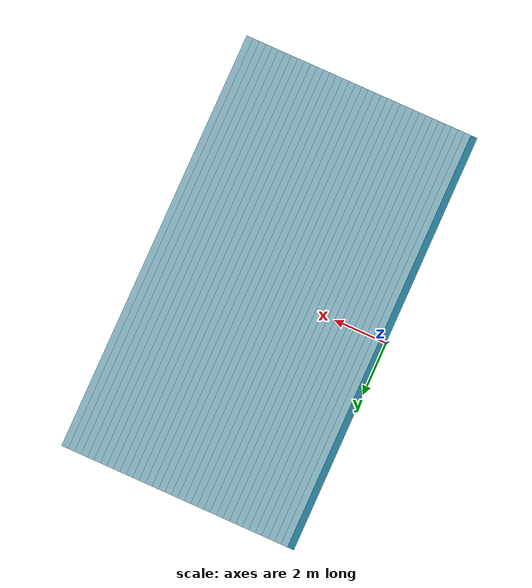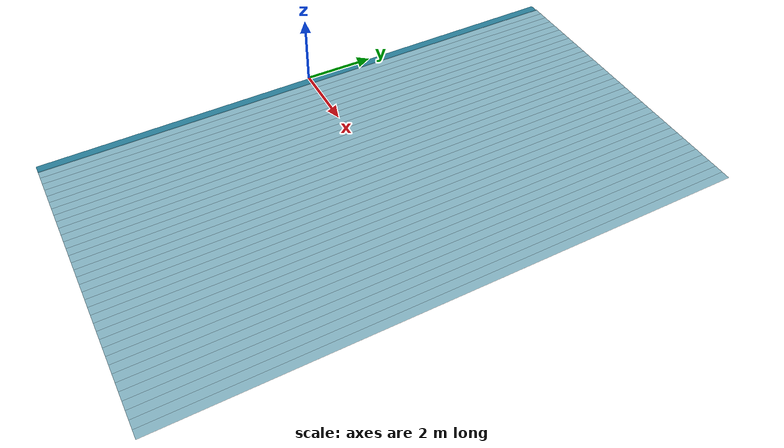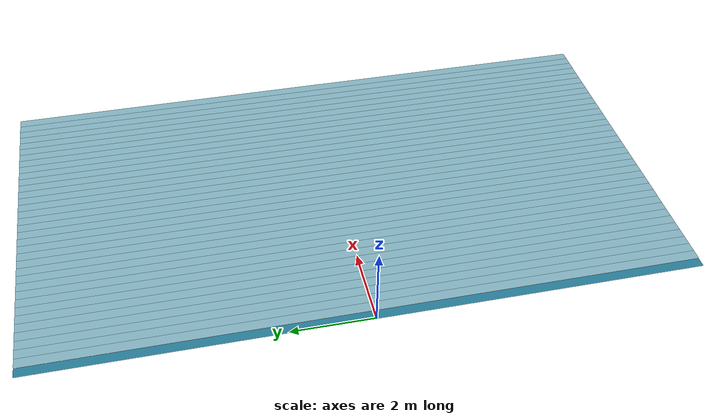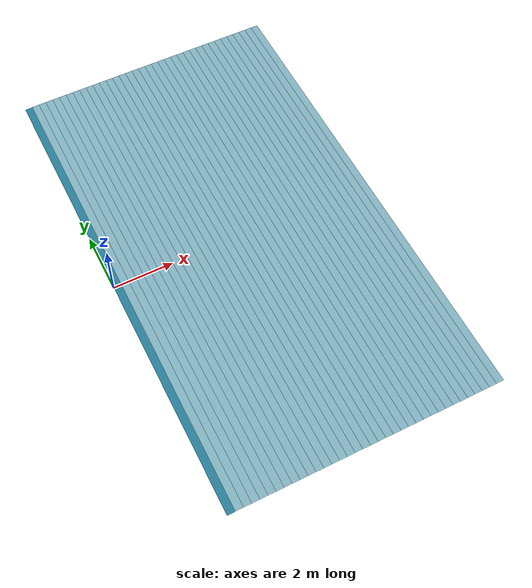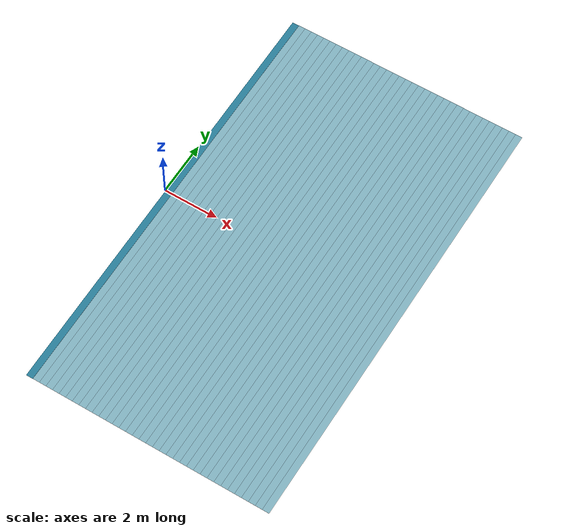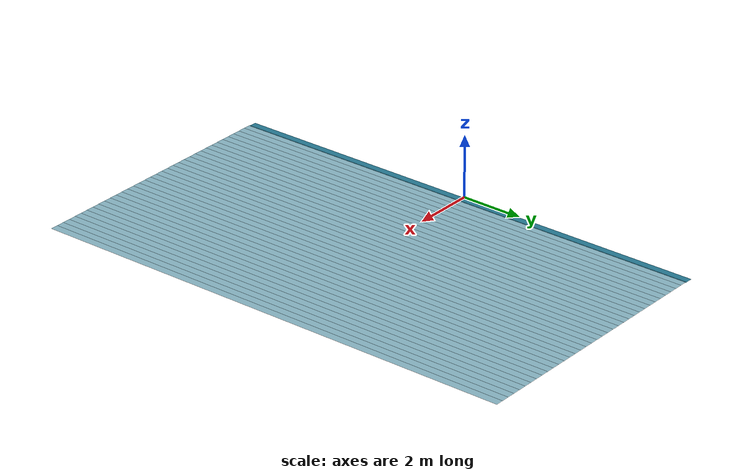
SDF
<sdf version="1.10">
 <world name="OceanWorld">
  <model name="pool_ripple_36">
   <static>true</static>
   <pose>0.125 0 0 0 0 0</pose>
   <link name="surface">
    <visual name="water">
     <cast_shadows>false</cast_shadows>
     <transparency>0.45</transparency>
     <geometry><plane><normal>0 0 1</normal><size>.251 16</size></plane></geometry>
     <material>
      <ambient>.10 .35 .42 1</ambient>
      <diffuse>.14 .46 .56 1</diffuse>
      <specular>.9 .95 1 1</specular>
      <pbr><metal><metalness>0</metalness><roughness>.16</roughness></metal></pbr>
     </material>
    </visual>
   </link>
  </model>
  <model name="pool_ripple_37">
   <static>true</static>
   <pose>0.375 0 0 0 0 0</pose>
   <link name="surface">
    <visual name="water">
     <cast_shadows>false</cast_shadows>
     <transparency>0.45</transparency>
     <geometry><plane><normal>0 0 1</normal><size>.251 16</size></plane></geometry>
     <material>
      <ambient>.10 .35 .42 1</ambient>
      <diffuse>.14 .46 .56 1</diffuse>
      <specular>.9 .95 1 1</specular>
      <pbr><metal><metalness>0</metalness><roughness>.16</roughness></metal></pbr>
     </material>
    </visual>
   </link>
  </model>
  <model name="pool_ripple_38">
   <static>true</static>
   <pose>0.625 0 0 0 0 0</pose>
   <link name="surface">
    <visual name="water">
     <cast_shadows>false</cast_shadows>
     <transparency>0.45</transparency>
     <geometry><plane><normal>0 0 1</normal><size>.251 16</size></plane></geometry>
     <material>
      <ambient>.10 .35 .42 1</ambient>
      <diffuse>.14 .46 .56 1</diffuse>
      <specular>.9 .95 1 1</specular>
      <pbr><metal><metalness>0</metalness><roughness>.16</roughness></metal></pbr>
     </material>
    </visual>
   </link>
  </model>
  <model name="pool_ripple_39">
   <static>true</static>
   <pose>0.875 0 0 0 0 0</pose>
   <link name="surface">
    <visual name="water">
     <cast_shadows>false</cast_shadows>
     <transparency>0.45</transparency>
     <geometry><plane><normal>0 0 1</normal><size>.251 16</size></plane></geometry>
     <material>
      <ambient>.10 .35 .42 1</ambient>
      <diffuse>.14 .46 .56 1</diffuse>
      <specular>.9 .95 1 1</specular>
      <pbr><metal><metalness>0</metalness><roughness>.16</roughness></metal></pbr>
     </material>
    </visual>
   </link>
  </model>
  <model name="pool_ripple_40">
   <static>true</static>
   <pose>1.125 0 0 0 0 0</pose>
   <link name="surface">
    <visual name="water">
     <cast_shadows>false</cast_shadows>
     <transparency>0.45</transparency>
     <geometry><plane><normal>0 0 1</normal><size>.251 16</size></plane></geometry>
     <material>
      <ambient>.10 .35 .42 1</ambient>
      <diffuse>.14 .46 .56 1</diffuse>
      <specular>.9 .95 1 1</specular>
      <pbr><metal><metalness>0</metalness><roughness>.16</roughness></metal></pbr>
     </material>
    </visual>
   </link>
  </model>
  <model name="pool_ripple_41">
   <static>true</static>
   <pose>1.375 0 0 0 0 0</pose>
   <link name="surface">
    <visual name="water">
     <cast_shadows>false</cast_shadows>
     <transparency>0.45</transparency>
     <geometry><plane><normal>0 0 1</normal><size>.251 16</size></plane></geometry>
     <material>
      <ambient>.10 .35 .42 1</ambient>
      <diffuse>.14 .46 .56 1</diffuse>
      <specular>.9 .95 1 1</specular>
      <pbr><metal><metalness>0</metalness><roughness>.16</roughness></metal></pbr>
     </material>
    </visual>
   </link>
  </model>
  <model name="pool_ripple_42">
   <static>true</static>
   <pose>1.625 0 0 0 0 0</pose>
   <link name="surface">
    <visual name="water">
     <cast_shadows>false</cast_shadows>
     <transparency>0.45</transparency>
     <geometry><plane><normal>0 0 1</normal><size>.251 16</size></plane></geometry>
     <material>
      <ambient>.10 .35 .42 1</ambient>
      <diffuse>.14 .46 .56 1</diffuse>
      <specular>.9 .95 1 1</specular>
      <pbr><metal><metalness>0</metalness><roughness>.16</roughness></metal></pbr>
     </material>
    </visual>
   </link>
  </model>
  <model name="pool_ripple_43">
   <static>true</static>
   <pose>1.875 0 0 0 0 0</pose>
   <link name="surface">
    <visual name="water">
     <cast_shadows>false</cast_shadows>
     <transparency>0.45</transparency>
     <geometry><plane><normal>0 0 1</normal><size>.251 16</size></plane></geometry>
     <material>
      <ambient>.10 .35 .42 1</ambient>
      <diffuse>.14 .46 .56 1</diffuse>
      <specular>.9 .95 1 1</specular>
      <pbr><metal><metalness>0</metalness><roughness>.16</roughness></metal></pbr>
     </material>
    </visual>
   </link>
  </model>
  <model name="pool_ripple_44">
   <static>true</static>
   <pose>2.125 0 0 0 0 0</pose>
   <link name="surface">
    <visual name="water">
     <cast_shadows>false</cast_shadows>
     <transparency>0.45</transparency>
     <geometry><plane><normal>0 0 1</normal><size>.251 16</size></plane></geometry>
     <material>
      <ambient>.10 .35 .42 1</ambient>
      <diffuse>.14 .46 .56 1</diffuse>
      <specular>.9 .95 1 1</specular>
      <pbr><metal><metalness>0</metalness><roughness>.16</roughness></metal></pbr>
     </material>
    </visual>
   </link>
  </model>
  <model name="pool_ripple_45">
   <static>true</static>
   <pose>2.375 0 0 0 0 0</pose>
   <link name="surface">
    <visual name="water">
     <cast_shadows>false</cast_shadows>
     <transparency>0.45</transparency>
     <geometry><plane><normal>0 0 1</normal><size>.251 16</size></plane></geometry>
     <material>
      <ambient>.10 .35 .42 1</ambient>
      <diffuse>.14 .46 .56 1</diffuse>
      <specular>.9 .95 1 1</specular>
      <pbr><metal><metalness>0</metalness><roughness>.16</roughness></metal></pbr>
     </material>
    </visual>
   </link>
  </model>
  <model name="pool_ripple_46">
   <static>true</static>
   <pose>2.625 0 0 0 0 0</pose>
   <link name="surface">
    <visual name="water">
     <cast_shadows>false</cast_shadows>
     <transparency>0.45</transparency>
     <geometry><plane><normal>0 0 1</normal><size>.251 16</size></plane></geometry>
     <material>
      <ambient>.10 .35 .42 1</ambient>
      <diffuse>.14 .46 .56 1</diffuse>
      <specular>.9 .95 1 1</specular>
      <pbr><metal><metalness>0</metalness><roughness>.16</roughness></metal></pbr>
     </material>
    </visual>
   </link>
  </model>
  <model name="pool_ripple_47">
   <static>true</static>
   <pose>2.875 0 0 0 0 0</pose>
   <link name="surface">
    <visual name="water">
     <cast_shadows>false</cast_shadows>
     <transparency>0.45</transparency>
     <geometry><plane><normal>0 0 1</normal><size>.251 16</size></plane></geometry>
     <material>
      <ambient>.10 .35 .42 1</ambient>
      <diffuse>.14 .46 .56 1</diffuse>
      <specular>.9 .95 1 1</specular>
      <pbr><metal><metalness>0</metalness><roughness>.16</roughness></metal></pbr>
     </material>
    </visual>
   </link>
  </model>
  <model name="pool_ripple_48">
   <static>true</static>
   <pose>3.125 0 0 0 0 0</pose>
   <link name="surface">
    <visual name="water">
     <cast_shadows>false</cast_shadows>
     <transparency>0.45</transparency>
     <geometry><plane><normal>0 0 1</normal><size>.251 16</size></plane></geometry>
     <material>
      <ambient>.10 .35 .42 1</ambient>
      <diffuse>.14 .46 .56 1</diffuse>
      <specular>.9 .95 1 1</specular>
      <pbr><metal><metalness>0</metalness><roughness>.16</roughness></metal></pbr>
     </material>
    </visual>
   </link>
  </model>
  <model name="pool_ripple_49">
   <static>true</static>
   <pose>3.375 0 0 0 0 0</pose>
   <link name="surface">
    <visual name="water">
     <cast_shadows>false</cast_shadows>
     <transparency>0.45</transparency>
     <geometry><plane><normal>0 0 1</normal><size>.251 16</size></plane></geometry>
     <material>
      <ambient>.10 .35 .42 1</ambient>
      <diffuse>.14 .46 .56 1</diffuse>
      <specular>.9 .95 1 1</specular>
      <pbr><metal><metalness>0</metalness><roughness>.16</roughness></metal></pbr>
     </material>
    </visual>
   </link>
  </model>
  <model name="pool_ripple_50">
   <static>true</static>
   <pose>3.625 0 0 0 0 0</pose>
   <link name="surface">
    <visual name="water">
     <cast_shadows>false</cast_shadows>
     <transparency>0.45</transparency>
     <geometry><plane><normal>0 0 1</normal><size>.251 16</size></plane></geometry>
     <material>
      <ambient>.10 .35 .42 1</ambient>
      <diffuse>.14 .46 .56 1</diffuse>
      <specular>.9 .95 1 1</specular>
      <pbr><metal><metalness>0</metalness><roughness>.16</roughness></metal></pbr>
     </material>
    </visual>
   </link>
  </model>
  <model name="pool_ripple_51">
   <static>true</static>
   <pose>3.875 0 0 0 0 0</pose>
   <link name="surface">
    <visual name="water">
     <cast_shadows>false</cast_shadows>
     <transparency>0.45</transparency>
     <geometry><plane><normal>0 0 1</normal><size>.251 16</size></plane></geometry>
     <material>
      <ambient>.10 .35 .42 1</ambient>
      <diffuse>.14 .46 .56 1</diffuse>
      <specular>.9 .95 1 1</specular>
      <pbr><metal><metalness>0</metalness><roughness>.16</roughness></metal></pbr>
     </material>
    </visual>
   </link>
  </model>
  <model name="pool_ripple_52">
   <static>true</static>
   <pose>4.125 0 0 0 0 0</pose>
   <link name="surface">
    <visual name="water">
     <cast_shadows>false</cast_shadows>
     <transparency>0.45</transparency>
     <geometry><plane><normal>0 0 1</normal><size>.251 16</size></plane></geometry>
     <material>
      <ambient>.10 .35 .42 1</ambient>
      <diffuse>.14 .46 .56 1</diffuse>
      <specular>.9 .95 1 1</specular>
      <pbr><metal><metalness>0</metalness><roughness>.16</roughness></metal></pbr>
     </material>
    </visual>
   </link>
  </model>
  <model name="pool_ripple_53">
   <static>true</static>
   <pose>4.375 0 0 0 0 0</pose>
   <link name="surface">
    <visual name="water">
     <cast_shadows>false</cast_shadows>
     <transparency>0.45</transparency>
     <geometry><plane><normal>0 0 1</normal><size>.251 16</size></plane></geometry>
     <material>
      <ambient>.10 .35 .42 1</ambient>
      <diffuse>.14 .46 .56 1</diffuse>
      <specular>.9 .95 1 1</specular>
      <pbr><metal><metalness>0</metalness><roughness>.16</roughness></metal></pbr>
     </material>
    </visual>
   </link>
  </model>
  <model name="pool_ripple_54">
   <static>true</static>
   <pose>4.625 0 0 0 0 0</pose>
   <link name="surface">
    <visual name="water">
     <cast_shadows>false</cast_shadows>
     <transparency>0.45</transparency>
     <geometry><plane><normal>0 0 1</normal><size>.251 16</size></plane></geometry>
     <material>
      <ambient>.10 .35 .42 1</ambient>
      <diffuse>.14 .46 .56 1</diffuse>
      <specular>.9 .95 1 1</specular>
      <pbr><metal><metalness>0</metalness><roughness>.16</roughness></metal></pbr>
     </material>
    </visual>
   </link>
  </model>
  <model name="pool_ripple_55">
   <static>true</static>
   <pose>4.875 0 0 0 0 0</pose>
   <link name="surface">
    <visual name="water">
     <cast_shadows>false</cast_shadows>
     <transparency>0.45</transparency>
     <geometry><plane><normal>0 0 1</normal><size>.251 16</size></plane></geometry>
     <material>
      <ambient>.10 .35 .42 1</ambient>
      <diffuse>.14 .46 .56 1</diffuse>
      <specular>.9 .95 1 1</specular>
      <pbr><metal><metalness>0</metalness><roughness>.16</roughness></metal></pbr>
     </material>
    </visual>
   </link>
  </model>
  <model name="pool_ripple_56">
   <static>true</static>
   <pose>5.125 0 0 0 0 0</pose>
   <link name="surface">
    <visual name="water">
     <cast_shadows>false</cast_shadows>
     <transparency>0.45</transparency>
     <geometry><plane><normal>0 0 1</normal><size>.251 16</size></plane></geometry>
     <material>
      <ambient>.10 .35 .42 1</ambient>
      <diffuse>.14 .46 .56 1</diffuse>
      <specular>.9 .95 1 1</specular>
      <pbr><metal><metalness>0</metalness><roughness>.16</roughness></metal></pbr>
     </material>
    </visual>
   </link>
  </model>
  <model name="pool_ripple_57">
   <static>true</static>
   <pose>5.375 0 0 0 0 0</pose>
   <link name="surface">
    <visual name="water">
     <cast_shadows>false</cast_shadows>
     <transparency>0.45</transparency>
     <geometry><plane><normal>0 0 1</normal><size>.251 16</size></plane></geometry>
     <material>
      <ambient>.10 .35 .42 1</ambient>
      <diffuse>.14 .46 .56 1</diffuse>
      <specular>.9 .95 1 1</specular>
      <pbr><metal><metalness>0</metalness><roughness>.16</roughness></metal></pbr>
     </material>
    </visual>
   </link>
  </model>
  <model name="pool_ripple_58">
   <static>true</static>
   <pose>5.625 0 0 0 0 0</pose>
   <link name="surface">
    <visual name="water">
     <cast_shadows>false</cast_shadows>
     <transparency>0.45</transparency>
     <geometry><plane><normal>0 0 1</normal><size>.251 16</size></plane></geometry>
     <material>
      <ambient>.10 .35 .42 1</ambient>
      <diffuse>.14 .46 .56 1</diffuse>
      <specular>.9 .95 1 1</specular>
      <pbr><metal><metalness>0</metalness><roughness>.16</roughness></metal></pbr>
     </material>
    </visual>
   </link>
  </model>
  <model name="pool_ripple_59">
   <static>true</static>
   <pose>5.875 0 0 0 0 0</pose>
   <link name="surface">
    <visual name="water">
     <cast_shadows>false</cast_shadows>
     <transparency>0.45</transparency>
     <geometry><plane><normal>0 0 1</normal><size>.251 16</size></plane></geometry>
     <material>
      <ambient>.10 .35 .42 1</ambient>
      <diffuse>.14 .46 .56 1</diffuse>
      <specular>.9 .95 1 1</specular>
      <pbr><metal><metalness>0</metalness><roughness>.16</roughness></metal></pbr>
     </material>
    </visual>
   </link>
  </model>
  <model name="pool_ripple_60">
   <static>true</static>
   <pose>6.125 0 0 0 0 0</pose>
   <link name="surface">
    <visual name="water">
     <cast_shadows>false</cast_shadows>
     <transparency>0.45</transparency>
     <geometry><plane><normal>0 0 1</normal><size>.251 16</size></plane></geometry>
     <material>
      <ambient>.10 .35 .42 1</ambient>
      <diffuse>.14 .46 .56 1</diffuse>
      <specular>.9 .95 1 1</specular>
      <pbr><metal><metalness>0</metalness><roughness>.16</roughness></metal></pbr>
     </material>
    </visual>
   </link>
  </model>
  <model name="pool_ripple_61">
   <static>true</static>
   <pose>6.375 0 0 0 0 0</pose>
   <link name="surface">
    <visual name="water">
     <cast_shadows>false</cast_shadows>
     <transparency>0.45</transparency>
     <geometry><plane><normal>0 0 1</normal><size>.251 16</size></plane></geometry>
     <material>
      <ambient>.10 .35 .42 1</ambient>
      <diffuse>.14 .46 .56 1</diffuse>
      <specular>.9 .95 1 1</specular>
      <pbr><metal><metalness>0</metalness><roughness>.16</roughness></metal></pbr>
     </material>
    </visual>
   </link>
  </model>
  <model name="pool_ripple_62">
   <static>true</static>
   <pose>6.625 0 0 0 0 0</pose>
   <link name="surface">
    <visual name="water">
     <cast_shadows>false</cast_shadows>
     <transparency>0.45</transparency>
     <geometry><plane><normal>0 0 1</normal><size>.251 16</size></plane></geometry>
     <material>
      <ambient>.10 .35 .42 1</ambient>
      <diffuse>.14 .46 .56 1</diffuse>
      <specular>.9 .95 1 1</specular>
      <pbr><metal><metalness>0</metalness><roughness>.16</roughness></metal></pbr>
     </material>
    </visual>
   </link>
  </model>
  <model name="pool_ripple_63">
   <static>true</static>
   <pose>6.875 0 0 0 0 0</pose>
   <link name="surface">
    <visual name="water">
     <cast_shadows>false</cast_shadows>
     <transparency>0.45</transparency>
     <geometry><plane><normal>0 0 1</normal><size>.251 16</size></plane></geometry>
     <material>
      <ambient>.10 .35 .42 1</ambient>
      <diffuse>.14 .46 .56 1</diffuse>
      <specular>.9 .95 1 1</specular>
      <pbr><metal><metalness>0</metalness><roughness>.16</roughness></metal></pbr>
     </material>
    </visual>
   </link>
  </model>
  <model name="pool_ripple_64">
   <static>true</static>
   <pose>7.125 0 0 0 0 0</pose>
   <link name="surface">
    <visual name="water">
     <cast_shadows>false</cast_shadows>
     <transparency>0.45</transparency>
     <geometry><plane><normal>0 0 1</normal><size>.251 16</size></plane></geometry>
     <material>
      <ambient>.10 .35 .42 1</ambient>
      <diffuse>.14 .46 .56 1</diffuse>
      <specular>.9 .95 1 1</specular>
      <pbr><metal><metalness>0</metalness><roughness>.16</roughness></metal></pbr>
     </material>
    </visual>
   </link>
  </model>
  <model name="pool_ripple_65">
   <static>true</static>
   <pose>7.375 0 0 0 0 0</pose>
   <link name="surface">
    <visual name="water">
     <cast_shadows>false</cast_shadows>
     <transparency>0.45</transparency>
     <geometry><plane><normal>0 0 1</normal><size>.251 16</size></plane></geometry>
     <material>
      <ambient>.10 .35 .42 1</ambient>
      <diffuse>.14 .46 .56 1</diffuse>
      <specular>.9 .95 1 1</specular>
      <pbr><metal><metalness>0</metalness><roughness>.16</roughness></metal></pbr>
     </material>
    </visual>
   </link>
  </model>
  <model name="pool_ripple_66">
   <static>true</static>
   <pose>7.625 0 0 0 0 0</pose>
   <link name="surface">
    <visual name="water">
     <cast_shadows>false</cast_shadows>
     <transparency>0.45</transparency>
     <geometry><plane><normal>0 0 1</normal><size>.251 16</size></plane></geometry>
     <material>
      <ambient>.10 .35 .42 1</ambient>
      <diffuse>.14 .46 .56 1</diffuse>
      <specular>.9 .95 1 1</specular>
      <pbr><metal><metalness>0</metalness><roughness>.16</roughness></metal></pbr>
     </material>
    </visual>
   </link>
  </model>
  <model name="pool_ripple_67">
   <static>true</static>
   <pose>7.875 0 0 0 0 0</pose>
   <link name="surface">
    <visual name="water">
     <cast_shadows>false</cast_shadows>
     <transparency>0.45</transparency>
     <geometry><plane><normal>0 0 1</normal><size>.251 16</size></plane></geometry>
     <material>
      <ambient>.10 .35 .42 1</ambient>
      <diffuse>.14 .46 .56 1</diffuse>
      <specular>.9 .95 1 1</specular>
      <pbr><metal><metalness>0</metalness><roughness>.16</roughness></metal></pbr>
     </material>
    </visual>
   </link>
  </model>
  <model name="pool_ripple_68">
   <static>true</static>
   <pose>8.125 0 0 0 0 0</pose>
   <link name="surface">
    <visual name="water">
     <cast_shadows>false</cast_shadows>
     <transparency>0.45</transparency>
     <geometry><plane><normal>0 0 1</normal><size>.251 16</size></plane></geometry>
     <material>
      <ambient>.10 .35 .42 1</ambient>
      <diffuse>.14 .46 .56 1</diffuse>
      <specular>.9 .95 1 1</specular>
      <pbr><metal><metalness>0</metalness><roughness>.16</roughness></metal></pbr>
     </material>
    </visual>
   </link>
  </model>
  <model name="pool_ripple_69">
   <static>true</static>
   <pose>8.375 0 0 0 0 0</pose>
   <link name="surface">
    <visual name="water">
     <cast_shadows>false</cast_shadows>
     <transparency>0.45</transparency>
     <geometry><plane><normal>0 0 1</normal><size>.251 16</size></plane></geometry>
     <material>
      <ambient>.10 .35 .42 1</ambient>
      <diffuse>.14 .46 .56 1</diffuse>
      <specular>.9 .95 1 1</specular>
      <pbr><metal><metalness>0</metalness><roughness>.16</roughness></metal></pbr>
     </material>
    </visual>
   </link>
  </model>
  <model name="pool_ripple_70">
   <static>true</static>
   <pose>8.625 0 0 0 0 0</pose>
   <link name="surface">
    <visual name="water">
     <cast_shadows>false</cast_shadows>
     <transparency>0.45</transparency>
     <geometry><plane><normal>0 0 1</normal><size>.251 16</size></plane></geometry>
     <material>
      <ambient>.10 .35 .42 1</ambient>
      <diffuse>.14 .46 .56 1</diffuse>
      <specular>.9 .95 1 1</specular>
      <pbr><metal><metalness>0</metalness><roughness>.16</roughness></metal></pbr>
     </material>
    </visual>
   </link>
  </model>
  <model name="pool_ripple_71">
   <static>true</static>
   <pose>8.875 0 0 0 0 0</pose>
   <link name="surface">
    <visual name="water">
     <cast_shadows>false</cast_shadows>
     <transparency>0.45</transparency>
     <geometry><plane><normal>0 0 1</normal><size>.251 16</size></plane></geometry>
     <material>
      <ambient>.10 .35 .42 1</ambient>
      <diffuse>.14 .46 .56 1</diffuse>
      <specular>.9 .95 1 1</specular>
      <pbr><metal><metalness>0</metalness><roughness>.16</roughness></metal></pbr>
     </material>
    </visual>
   </link>
  </model>
 </world>
</sdf>
